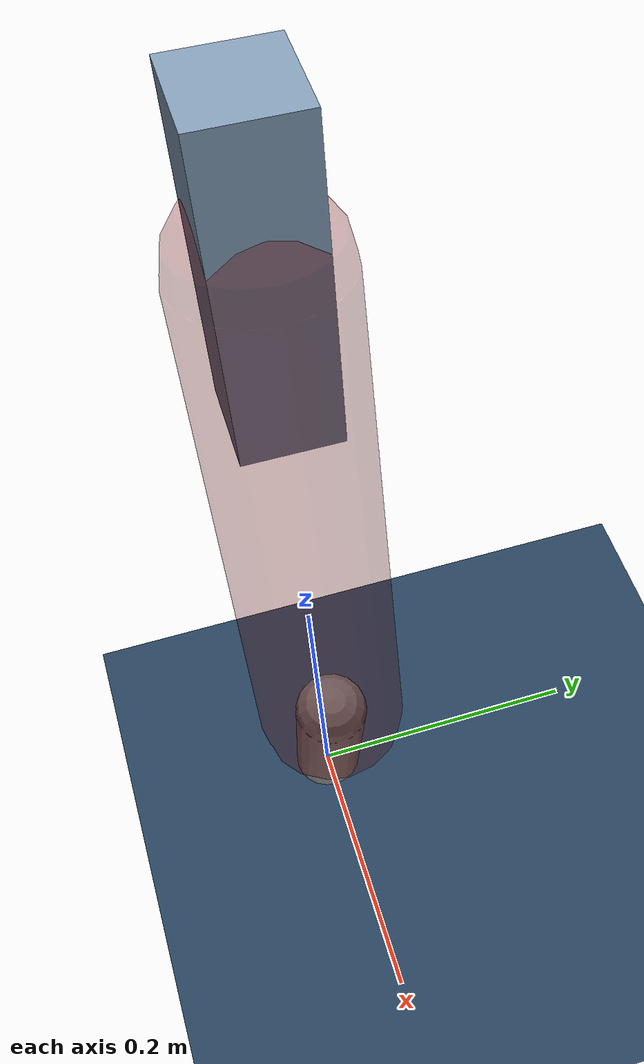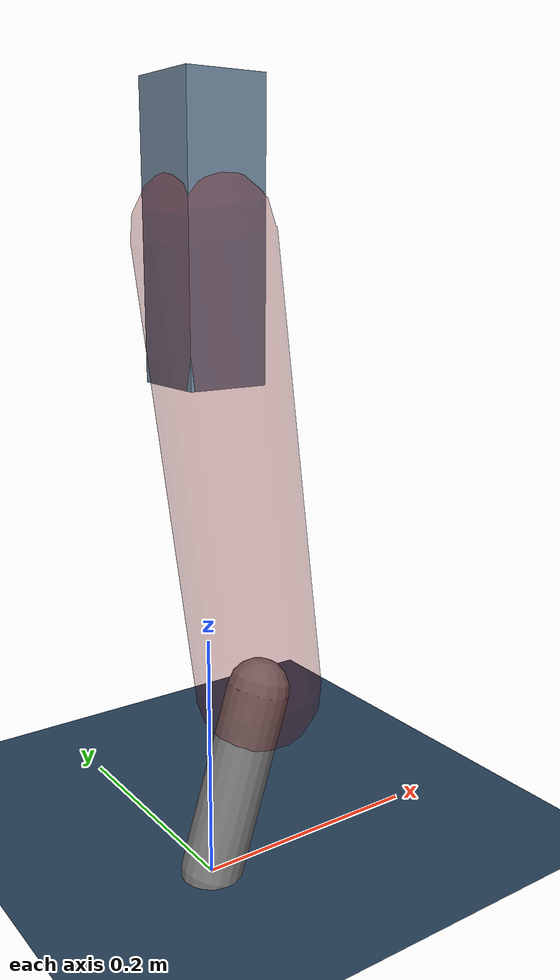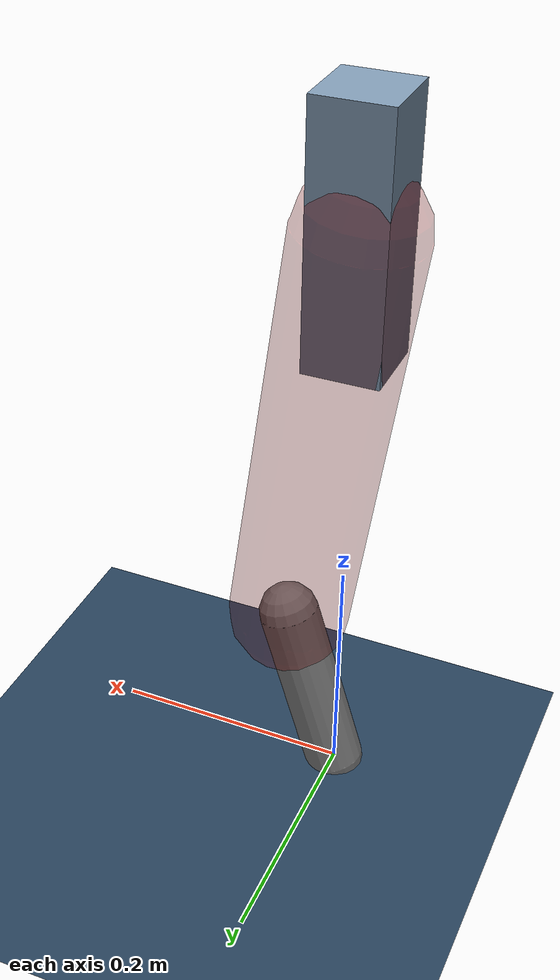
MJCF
<mujoco model="Hopper2D">
	<compiler inertiafromgeom="true" angle="radian" />
	<option timestep="0.001" integrator="implicit" cone="elliptic" solver="Newton" tolerance="1e-10" />

	<default>
		<geom contype="1" conaffinity="1" condim="3" friction="2 0.005 0.0001" solref="0.005 1" />
		<joint limited="true" damping="0.1" />
	</default>

	<asset>
		<texture name="skybox" type="skybox" builtin="gradient" rgb1=".4 .6 .8" rgb2="0 0 0" width="800" height="800" />
		<texture name="grid" type="2d" builtin="checker" rgb1=".1 .2 .3" rgb2=".2 .3 .4" width="300" height="300" mark="edge" markrgb=".2 .3 .4" />
		<material name="ground" texture="grid" texrepeat="1 1" texuniform="true" reflectance="0.1" />
		<material name="leg" rgba="0.5 0.6 0.7 1" />
	</asset>

	<worldbody>

		<geom name="floor" type="plane" size="5 5 0.25" material="ground" />

		<light directional="false" diffuse="0.8 0.8 0.8" specular="0.3 0.3 0.3" pos="0 0 2" dir="0 0 -1" />
		<light mode="targetbodycom" target="base" directional="false" diffuse="0.8 0.8 0.8" specular="0.3 0.3 0.3" pos="0 0 2" dir="0 0 -1" />

		<camera name="fixed" pos="0 -2 1" xyaxes="1 0 0 0 0 1" />
		<camera name="tracking" mode="trackcom" pos="0 -3 1" />

		<body name="root" pos="0 0 0.4946668477555103">
			<joint name="slide_x" type="slide" axis="1 0 0" range="-100 100" />
			<joint name="slide_z" type="slide" axis="0 0 1" range="0 10" />

			<body name="base" pos="0 0 0">
				<geom name="torso" type="box" size="0.03 0.03 0.1" mass="2.499" material="leg" />

				<body name="link1" pos="0 0 0" euler="0 1.4384945728132836 0">
					<joint type="hinge" axis="0 -1 0" pos="0 0 0" name="hinge1" limited="true" range="-3.14 3.14" stiffness="0" damping="0.1" />
					<geom name="thigh" type="capsule" fromto="0 0 0 0.34885744147321174 0 0" size="0.05" rgba="0.5 0 0 0.3" mass="1.1235008361249927" />

					<body name="link2" pos="0.34885744147321174 0 0" euler="0 0.4321344441305768 0">
						<joint type="hinge" axis="0 -1 0" pos="0 0 0" name="hinge2" limited="true" range="-3.14 3.14" stiffness="0" damping="0.1" />
						<geom name="shank" type="capsule" fromto="0 0 0 0.15580940628229856 0 0" size="0.025" mass="0.3628284656540687" />

					</body>
				</body>
			</body>
		</body>
	</worldbody>

	<actuator>
		<motor name="torque1" joint="hinge1" ctrlrange="-44.011246620350896 44.011246620350896" ctrllimited="true" gear="1" />
		<motor name="torque2" joint="hinge2" ctrlrange="-97.71993812681235 97.71993812681235" ctrllimited="true" gear="1" />
	</actuator>
</mujoco>
